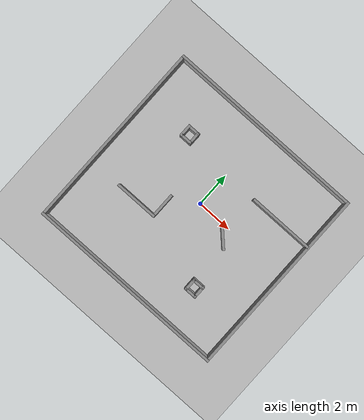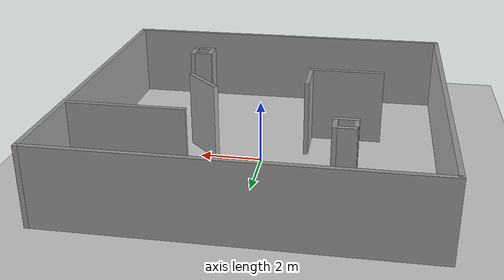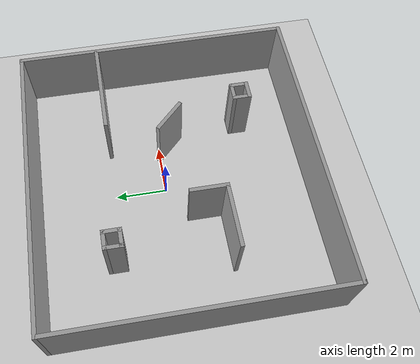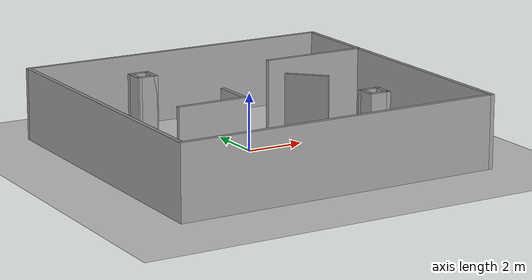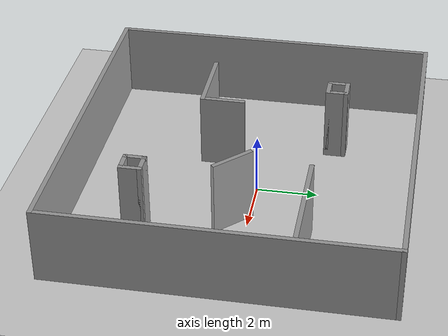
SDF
<sdf version="1.7">
 <world name="default">
  <light name="sun" type="directional">
   <pose>0 0 10 0 -0 0</pose>
   <diffuse>0.8 0.8 0.8 1</diffuse>
   <specular>0.2 0.2 0.2 1</specular>
   <attenuation>
    <range>1000</range>
    <constant>0.9</constant>
    <linear>0.01</linear>
    <quadratic>0.001</quadratic>
   </attenuation>
   <direction>-0.5 0.1 -0.9</direction>
   <spot><inner_angle>0</inner_angle><outer_angle>0</outer_angle><falloff>0</falloff></spot>
  </light>
  <plugin name="gazebo_ros_state" filename="libgazebo_ros_state.so">
   <ros>
    <namespace>/</namespace>
    <remapping>model_states:=model_states</remapping>
    <remapping>link_states:=link_states</remapping>
   </ros>
   <update_rate>1.0</update_rate>
  </plugin>
  <model name="ground_plane">
   <static>1</static>
   <link name="link">
    <collision name="collision">
     <geometry><plane><normal>0 0 1</normal><size>100 100</size></plane></geometry>
     <surface><friction><ode><mu>100</mu><mu2>50</mu2></ode></friction></surface>
    </collision>
    <visual name="visual">
     <cast_shadows>0</cast_shadows>
     <geometry><plane><normal>0 0 1</normal><size>100 100</size></plane></geometry>
     <material>
      <script><uri>file://media/materials/scripts/gazebo.material</uri><name>Gazebo/Grey</name></script>
     </material>
    </visual>
   </link>
  </model>
  <gravity>0 0 -9.8</gravity>
  <magnetic_field>6e-06 2.3e-05 -4.2e-05</magnetic_field>
  <atmosphere type="adiabatic"/>
  <physics type="ode">
   <max_step_size>0.01</max_step_size>
   <real_time_factor>1</real_time_factor>
   <real_time_update_rate>100</real_time_update_rate>
  </physics>
  <scene><ambient>0.4 0.4 0.4 1</ambient><background>0.7 0.7 0.7 1</background><shadows>false</shadows></scene>
  <audio><device>default</device></audio>
  <spherical_coordinates>
   <surface_model>EARTH_WGS84</surface_model>
   <latitude_deg>0</latitude_deg>
   <longitude_deg>0</longitude_deg>
   <elevation>0</elevation>
   <heading_deg>0</heading_deg>
  </spherical_coordinates>
  <model name="square_obstacle">
   <pose>-0.024354 -0.341458 0 0 -0 0</pose>
   <link name="Wall_1">
    <collision name="Wall_1_Collision">
     <geometry><box><size>11.5 0.15 2.5</size></box></geometry>
     <pose>0 0 1.25 0 -0 0</pose>
    </collision>
    <visual name="Wall_1_Visual">
     <pose>0 0 1.25 0 -0 0</pose>
     <geometry><box><size>11.5 0.15 2.5</size></box></geometry>
     <material>
      <script><uri>file://media/materials/scripts/gazebo.material</uri><name>Gazebo/Grey</name></script>
      <ambient>1 1 1 1</ambient>
     </material>
     <meta><layer>0</layer></meta>
    </visual>
    <pose>-0 -5.425 0 0 -0 0</pose>
   </link>
   <link name="Wall_10">
    <collision name="Wall_10_Collision">
     <geometry><box><size>0.75 0.15 2.5</size></box></geometry>
     <pose>0 0 1.25 0 -0 0</pose>
    </collision>
    <visual name="Wall_10_Visual">
     <pose>0 0 1.25 0 -0 0</pose>
     <geometry><box><size>0.75 0.15 2.5</size></box></geometry>
     <material>
      <script><uri>file://media/materials/scripts/gazebo.material</uri><name>Gazebo/Grey</name></script>
      <ambient>1 1 1 1</ambient>
     </material>
     <meta><layer>0</layer></meta>
    </visual>
    <pose>2.40237 -3.11216 0 0 -0 -1.5708</pose>
   </link>
   <link name="Wall_11">
    <collision name="Wall_11_Collision">
     <geometry><box><size>0.75 0.15 2.5</size></box></geometry>
     <pose>0 0 1.25 0 -0 0</pose>
    </collision>
    <visual name="Wall_11_Visual">
     <pose>0 0 1.25 0 -0 0</pose>
     <geometry><box><size>0.75 0.15 2.5</size></box></geometry>
     <material>
      <script><uri>file://media/materials/scripts/gazebo.material</uri><name>Gazebo/Grey</name></script>
      <ambient>1 1 1 1</ambient>
     </material>
     <meta><layer>0</layer></meta>
    </visual>
    <pose>2.70237 -3.41216 0 0 -0 0</pose>
   </link>
   <link name="Wall_12">
    <collision name="Wall_12_Collision">
     <geometry><box><size>0.75 0.15 2.5</size></box></geometry>
     <pose>0 0 1.25 0 -0 0</pose>
    </collision>
    <visual name="Wall_12_Visual">
     <pose>0 0 1.25 0 -0 0</pose>
     <geometry><box><size>0.75 0.15 2.5</size></box></geometry>
     <material>
      <script><uri>file://media/materials/scripts/gazebo.material</uri><name>Gazebo/Grey</name></script>
      <ambient>1 1 1 1</ambient>
     </material>
     <meta><layer>0</layer></meta>
    </visual>
    <pose>3.00237 -3.11216 0 0 -0 1.5708</pose>
   </link>
   <link name="Wall_14">
    <collision name="Wall_14_Collision">
     <geometry><box><size>3.75 0.15 2.5</size></box></geometry>
     <pose>0 0 1.25 0 -0 0</pose>
    </collision>
    <visual name="Wall_14_Visual">
     <pose>0 0 1.25 0 -0 0</pose>
     <geometry><box><size>3.75 0.15 2.5</size></box></geometry>
     <material>
      <script><uri>file://media/materials/scripts/gazebo.material</uri><name>Gazebo/Grey</name></script>
      <ambient>1 1 1 1</ambient>
     </material>
     <meta><layer>0</layer></meta>
    </visual>
    <pose>3.79679 2.3531 0 0 -0 3.14159</pose>
   </link>
   <link name="Wall_16">
    <collision name="Wall_16_Collision">
     <geometry><box><size>0.75 0.15 2.5</size></box></geometry>
     <pose>0 0 1.25 0 -0 0</pose>
    </collision>
    <visual name="Wall_16_Visual">
     <pose>0 0 1.25 0 -0 0</pose>
     <geometry><box><size>0.75 0.15 2.5</size></box></geometry>
     <material>
      <script><uri>file://media/materials/scripts/gazebo.material</uri><name>Gazebo/Grey</name></script>
      <ambient>1 1 1 1</ambient>
     </material>
     <meta><layer>0</layer></meta>
    </visual>
    <pose>-3.06801 2.6413 0 0 -0 -1.5708</pose>
   </link>
   <link name="Wall_17">
    <collision name="Wall_17_Collision">
     <geometry><box><size>0.75 0.15 2.5</size></box></geometry>
     <pose>0 0 1.25 0 -0 0</pose>
    </collision>
    <visual name="Wall_17_Visual">
     <pose>0 0 1.25 0 -0 0</pose>
     <geometry><box><size>0.75 0.15 2.5</size></box></geometry>
     <material>
      <script><uri>file://media/materials/scripts/gazebo.material</uri><name>Gazebo/Grey</name></script>
      <ambient>1 1 1 1</ambient>
     </material>
     <meta><layer>0</layer></meta>
    </visual>
    <pose>-2.76801 2.3413 0 0 -0 0</pose>
   </link>
   <link name="Wall_18">
    <collision name="Wall_18_Collision">
     <geometry><box><size>0.75 0.15 2.5</size></box></geometry>
     <pose>0 0 1.25 0 -0 0</pose>
    </collision>
    <visual name="Wall_18_Visual">
     <pose>0 0 1.25 0 -0 0</pose>
     <geometry><box><size>0.75 0.15 2.5</size></box></geometry>
     <material>
      <script><uri>file://media/materials/scripts/gazebo.material</uri><name>Gazebo/Grey</name></script>
      <ambient>1 1 1 1</ambient>
     </material>
     <meta><layer>0</layer></meta>
    </visual>
    <pose>-2.46801 2.6413 0 0 -0 1.5708</pose>
   </link>
   <link name="Wall_19">
    <collision name="Wall_19_Collision">
     <geometry><box><size>0.75 0.15 2.5</size></box></geometry>
     <pose>0 0 1.25 0 -0 0</pose>
    </collision>
    <visual name="Wall_19_Visual">
     <pose>0 0 1.25 0 -0 0</pose>
     <geometry><box><size>0.75 0.15 2.5</size></box></geometry>
     <material>
      <script><uri>file://media/materials/scripts/gazebo.material</uri><name>Gazebo/Grey</name></script>
      <ambient>1 1 1 1</ambient>
     </material>
     <meta><layer>0</layer></meta>
    </visual>
    <pose>-2.76801 2.9413 0 0 -0 3.14159</pose>
   </link>
   <link name="Wall_2">
    <collision name="Wall_2_Collision">
     <geometry><box><size>11 0.15 2.5</size></box></geometry>
     <pose>0 0 1.25 0 -0 0</pose>
    </collision>
    <visual name="Wall_2_Visual">
     <pose>0 0 1.25 0 -0 0</pose>
     <geometry><box><size>11 0.15 2.5</size></box></geometry>
     <material>
      <script><uri>file://media/materials/scripts/gazebo.material</uri><name>Gazebo/Grey</name></script>
      <ambient>1 1 1 1</ambient>
     </material>
     <meta><layer>0</layer></meta>
    </visual>
    <pose>5.675 -0 0 0 -0 1.5708</pose>
   </link>
   <link name="Wall_21">
    <collision name="Wall_21_Collision">
     <geometry><box><size>1.5 0.15 2.5</size></box></geometry>
     <pose>0 0 1.25 0 -0 0</pose>
    </collision>
    <visual name="Wall_21_Visual">
     <pose>0 0 1.25 0 -0 0</pose>
     <geometry><box><size>1.5 0.15 2.5</size></box></geometry>
     <material>
      <script><uri>file://media/materials/scripts/gazebo.material</uri><name>Gazebo/Grey</name></script>
      <ambient>1 1 1 1</ambient>
     </material>
     <meta><layer>0</layer></meta>
    </visual>
    <pose>1.98337 -0.124772 0 0 -0 -0.785398</pose>
   </link>
   <link name="Wall_3">
    <collision name="Wall_3_Collision">
     <geometry><box><size>11.5 0.15 2.5</size></box></geometry>
     <pose>0 0 1.25 0 -0 0</pose>
    </collision>
    <visual name="Wall_3_Visual">
     <pose>0 0 1.25 0 -0 0</pose>
     <geometry><box><size>11.5 0.15 2.5</size></box></geometry>
     <material>
      <script><uri>file://media/materials/scripts/gazebo.material</uri><name>Gazebo/Grey</name></script>
      <ambient>1 1 1 1</ambient>
     </material>
     <meta><layer>0</layer></meta>
    </visual>
    <pose>-0 5.425 0 0 -0 3.14159</pose>
   </link>
   <link name="Wall_4">
    <collision name="Wall_4_Collision">
     <geometry><box><size>11 0.15 2.5</size></box></geometry>
     <pose>0 0 1.25 0 -0 0</pose>
    </collision>
    <visual name="Wall_4_Visual">
     <pose>0 0 1.25 0 -0 0</pose>
     <geometry><box><size>11 0.15 2.5</size></box></geometry>
     <material>
      <script><uri>file://media/materials/scripts/gazebo.material</uri><name>Gazebo/Grey</name></script>
      <ambient>1 1 1 1</ambient>
     </material>
     <meta><layer>0</layer></meta>
    </visual>
    <pose>-5.675 -0 0 0 -0 -1.5708</pose>
   </link>
   <link name="Wall_6">
    <collision name="Wall_6_Collision">
     <geometry><box><size>2.5 0.15 2.5</size></box></geometry>
     <pose>0 0 1.25 0 -0 0</pose>
    </collision>
    <visual name="Wall_6_Visual">
     <pose>0 0 1.25 0 -0 0</pose>
     <geometry><box><size>2.5 0.15 2.5</size></box></geometry>
     <material>
      <script><uri>file://media/materials/scripts/gazebo.material</uri><name>Gazebo/Grey</name></script>
      <ambient>1 1 1 1</ambient>
     </material>
     <meta><layer>0</layer></meta>
    </visual>
    <pose>-2.54455 -1.72722 0 0 -0 0</pose>
   </link>
   <link name="Wall_7">
    <collision name="Wall_7_Collision">
     <geometry><box><size>1.5 0.15 2.5</size></box></geometry>
     <pose>0 0 1.25 0 -0 0</pose>
    </collision>
    <visual name="Wall_7_Visual">
     <pose>0 0 1.25 0 -0 0</pose>
     <geometry><box><size>1.5 0.15 2.5</size></box></geometry>
     <material>
      <script><uri>file://media/materials/scripts/gazebo.material</uri><name>Gazebo/Grey</name></script>
      <ambient>1 1 1 1</ambient>
     </material>
     <meta><layer>0</layer></meta>
    </visual>
    <pose>-1.36955 -1.05222 0 0 -0 1.5708</pose>
   </link>
   <link name="Wall_9">
    <collision name="Wall_9_Collision">
     <geometry><box><size>0.75 0.15 2.5</size></box></geometry>
     <pose>0 0 1.25 0 -0 0</pose>
    </collision>
    <visual name="Wall_9_Visual">
     <pose>0 0 1.25 0 -0 0</pose>
     <geometry><box><size>0.75 0.15 2.5</size></box></geometry>
     <material>
      <script><uri>file://media/materials/scripts/gazebo.material</uri><name>Gazebo/Grey</name></script>
      <ambient>1 1 1 1</ambient>
     </material>
     <meta><layer>0</layer></meta>
    </visual>
    <pose>2.70237 -2.81216 0 0 -0 3.14159</pose>
   </link>
   <static>1</static>
  </model>
 </world>
</sdf>
